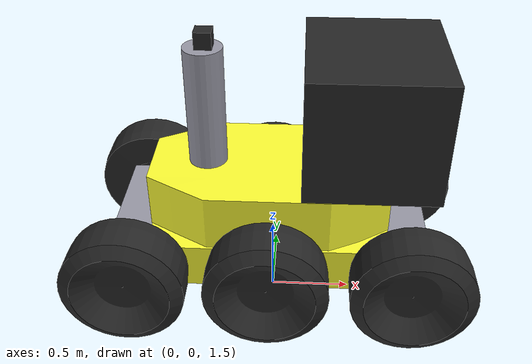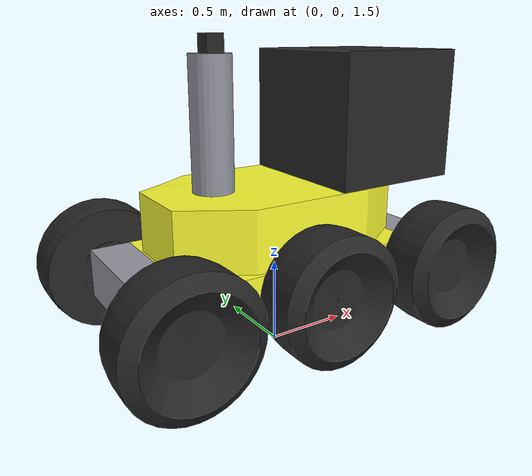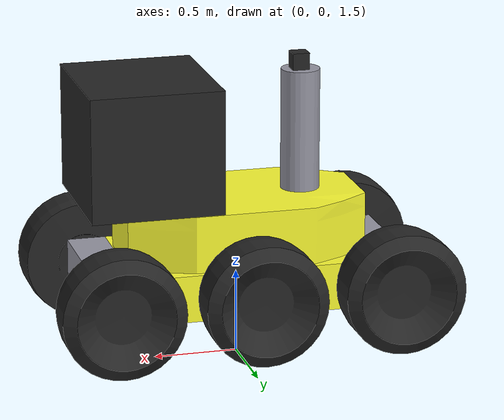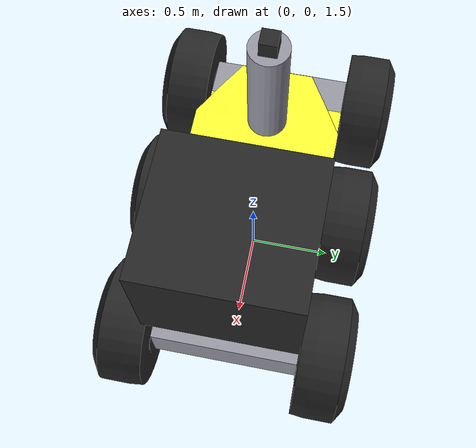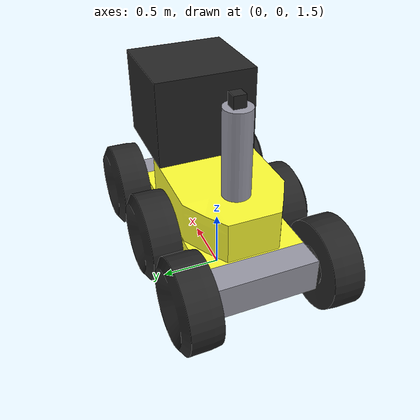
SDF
<sdf version="1.7">
 <world name="default">
  <plugin filename="gz-sim-physics-system" name="gz::sim::systems::Physics"/>
  <plugin filename="gz-sim-user-commands-system" name="gz::sim::systems::UserCommands"/>
  <plugin filename="gz-sim-scene-broadcaster-system" name="gz::sim::systems::SceneBroadcaster"/>
  <plugin filename="gz-sim-sensors-system" name="gz::sim::systems::Sensors">
   <render_engine>ogre2</render_engine>
  </plugin>
  <light name="sun" type="directional">
   <pose>0 0 10 0 -0 0</pose>
   <diffuse>0.8 0.8 0.8 1</diffuse>
   <specular>0.2 0.2 0.2 1</specular>
   <attenuation>
    <range>1000</range>
    <constant>0.9</constant>
    <linear>0.01</linear>
    <quadratic>0.001</quadratic>
   </attenuation>
   <direction>-0.5 0.1 -0.9</direction>
   <spot><inner_angle>0</inner_angle><outer_angle>0</outer_angle><falloff>0</falloff></spot>
  </light>
  <gravity>0 0 -9.8</gravity>
  <magnetic_field>6e-06 2.3e-05 -4.2e-05</magnetic_field>
  <atmosphere type="adiabatic"/>
  <physics type="bullet">
   <max_step_size>0.001</max_step_size>
   <real_time_factor>1</real_time_factor>
   <real_time_update_rate>1000</real_time_update_rate>
   <bullet><solver><type>sequential_impulse</type></solver></bullet>
  </physics>
  <scene>
   <ambient>0.4 0.4 0.4 1</ambient>
   <background>0.7 0.7 0.7 1</background>
   <shadows>1</shadows>
   <sky><clouds><speed>12</speed></clouds><time>10</time></sky>
  </scene>
  <spherical_coordinates>
   <surface_model>EARTH_WGS84</surface_model>
   <latitude_deg>0</latitude_deg>
   <longitude_deg>0</longitude_deg>
   <elevation>0</elevation>
   <heading_deg>0</heading_deg>
  </spherical_coordinates>
  <model name="robovolc">
   <link name="link_0">
    <inertial>
     <mass>1</mass>
     <inertia>
      <ixx>0.166667</ixx>
      <ixy>0</ixy>
      <ixz>0</ixz>
      <iyy>0.166667</iyy>
      <iyz>0</iyz>
      <izz>0.166667</izz>
     </inertia>
    </inertial>
    <pose>-0.014097 0.007179 0 0 -0 0</pose>
    <visual name="visual">
     <geometry>
      <mesh>
       <uri>/home/kenan/Documents/Thesis/robot-alignment-thesis/gazebo/models/robovolc/parts/lowerframe.dae</uri>
       <scale>1 1 1</scale>
      </mesh>
     </geometry>
     <material>
      <ambient>0.8 0.8 0.1 1.0</ambient>
      <diffuse>1.0 1.0 0.2 1.0</diffuse>
      <specular>0.2 0.2 0.2 1.0</specular>
      <emissive>0 0 0 1.0</emissive>
     </material>
    </visual>
    <collision name="collision">
     <geometry><box><size>0.8 0.8 0.2</size></box></geometry>
     <surface>
      <friction>
       <ode><mu>1</mu><mu2>1</mu2><fdir1>0 0 0</fdir1><slip1>0</slip1><slip2>0</slip2></ode>
       <torsional>
        <coefficient>1</coefficient>
        <patch_radius>0</patch_radius>
        <surface_radius>0</surface_radius>
        <use_patch_radius>1</use_patch_radius>
        <ode><slip>0</slip></ode>
       </torsional>
      </friction>
      <bounce><restitution_coefficient>0</restitution_coefficient><threshold>1e+06</threshold></bounce>
      <contact>
       <collide_without_contact>0</collide_without_contact>
       <collide_without_contact_bitmask>1</collide_without_contact_bitmask>
       <collide_bitmask>1</collide_bitmask>
       <ode>
        <soft_cfm>0</soft_cfm>
        <soft_erp>0.2</soft_erp>
        <kp>1e+13</kp>
        <kd>1</kd>
        <max_vel>0.01</max_vel>
        <min_depth>0</min_depth>
       </ode>
       <bullet>
        <split_impulse>1</split_impulse>
        <split_impulse_penetration_threshold>-0.01</split_impulse_penetration_threshold>
        <soft_cfm>0</soft_cfm>
        <soft_erp>0.2</soft_erp>
        <kp>1e+13</kp>
        <kd>1</kd>
       </bullet>
      </contact>
     </surface>
    </collision>
   </link>
   <link name="link_1">
    <inertial>
     <mass>1</mass>
     <inertia>
      <ixx>0.166667</ixx>
      <ixy>0</ixy>
      <ixz>0</ixz>
      <iyy>0.166667</iyy>
      <iyz>0</iyz>
      <izz>0.166667</izz>
     </inertia>
    </inertial>
    <pose>0.819354 0.007179 0 0 -0 0</pose>
    <visual name="visual">
     <geometry>
      <mesh>
       <uri>/home/kenan/Documents/Thesis/robot-alignment-thesis/gazebo/models/robovolc/parts/freedom.dae</uri>
       <scale>1 1 1</scale>
      </mesh>
     </geometry>
     <material>
      <ambient>0.5 0.5 0.5 1.0</ambient>
      <diffuse>0.6 0.6 0.65 1.0</diffuse>
      <specular>0.7 0.7 0.7 1.0</specular>
      <emissive>0 0 0 1.0</emissive>
     </material>
    </visual>
    <collision name="collision">
     <geometry><box><size>0.8 0.8 0.2</size></box></geometry>
     <surface>
      <friction>
       <ode><mu>1</mu><mu2>1</mu2><fdir1>0 0 0</fdir1><slip1>0</slip1><slip2>0</slip2></ode>
       <torsional>
        <coefficient>1</coefficient>
        <patch_radius>0</patch_radius>
        <surface_radius>0</surface_radius>
        <use_patch_radius>1</use_patch_radius>
        <ode><slip>0</slip></ode>
       </torsional>
      </friction>
      <bounce><restitution_coefficient>0</restitution_coefficient><threshold>1e+06</threshold></bounce>
      <contact>
       <collide_without_contact>0</collide_without_contact>
       <collide_without_contact_bitmask>1</collide_without_contact_bitmask>
       <collide_bitmask>1</collide_bitmask>
       <ode>
        <soft_cfm>0</soft_cfm>
        <soft_erp>0.2</soft_erp>
        <kp>1e+13</kp>
        <kd>1</kd>
        <max_vel>0.01</max_vel>
        <min_depth>0</min_depth>
       </ode>
       <bullet>
        <split_impulse>1</split_impulse>
        <split_impulse_penetration_threshold>-0.01</split_impulse_penetration_threshold>
        <soft_cfm>0</soft_cfm>
        <soft_erp>0.2</soft_erp>
        <kp>1e+13</kp>
        <kd>1</kd>
       </bullet>
      </contact>
     </surface>
    </collision>
   </link>
   <link name="link_1_clone">
    <inertial>
     <mass>1</mass>
     <inertia>
      <ixx>0.166667</ixx>
      <ixy>0</ixy>
      <ixz>0</ixz>
      <iyy>0.166667</iyy>
      <iyz>0</iyz>
      <izz>0.166667</izz>
     </inertia>
    </inertial>
    <pose>-0.84755 0.007179 0 0 -0 0</pose>
    <visual name="visual">
     <geometry>
      <mesh>
       <uri>/home/kenan/Documents/Thesis/robot-alignment-thesis/gazebo/models/robovolc/parts/freedom.dae</uri>
       <scale>1 1 1</scale>
      </mesh>
     </geometry>
     <material>
      <ambient>0.5 0.5 0.5 1.0</ambient>
      <diffuse>0.6 0.6 0.65 1.0</diffuse>
      <specular>0.7 0.7 0.7 1.0</specular>
      <emissive>0 0 0 1.0</emissive>
     </material>
    </visual>
    <collision name="collision">
     <geometry><box><size>0.8 0.8 0.2</size></box></geometry>
     <surface>
      <friction>
       <ode><mu>1</mu><mu2>1</mu2><fdir1>0 0 0</fdir1><slip1>0</slip1><slip2>0</slip2></ode>
       <torsional>
        <coefficient>1</coefficient>
        <patch_radius>0</patch_radius>
        <surface_radius>0</surface_radius>
        <use_patch_radius>1</use_patch_radius>
        <ode><slip>0</slip></ode>
       </torsional>
      </friction>
      <bounce><restitution_coefficient>0</restitution_coefficient><threshold>1e+06</threshold></bounce>
      <contact>
       <collide_without_contact>0</collide_without_contact>
       <collide_without_contact_bitmask>1</collide_without_contact_bitmask>
       <collide_bitmask>1</collide_bitmask>
       <ode>
        <soft_cfm>0</soft_cfm>
        <soft_erp>0.2</soft_erp>
        <kp>1e+13</kp>
        <kd>1</kd>
        <max_vel>0.01</max_vel>
        <min_depth>0</min_depth>
       </ode>
       <bullet>
        <split_impulse>1</split_impulse>
        <split_impulse_penetration_threshold>-0.01</split_impulse_penetration_threshold>
        <soft_cfm>0</soft_cfm>
        <soft_erp>0.2</soft_erp>
        <kp>1e+13</kp>
        <kd>1</kd>
       </bullet>
      </contact>
     </surface>
    </collision>
   </link>
   <link name="link_2">
    <inertial>
     <mass>1</mass>
     <inertia>
      <ixx>0.166667</ixx>
      <ixy>0</ixy>
      <ixz>0</ixz>
      <iyy>0.166667</iyy>
      <iyz>0</iyz>
      <izz>0.166667</izz>
     </inertia>
    </inertial>
    <pose>0.826437 -0.58875 0 0 -0 0</pose>
    <visual name="visual">
     <geometry>
      <mesh>
       <uri>/home/kenan/Documents/Thesis/robot-alignment-thesis/gazebo/models/robovolc/parts/wheel.dae</uri>
       <scale>1 1 1</scale>
      </mesh>
     </geometry>
     <material>
      <ambient>0.1 0.1 0.1 1.0</ambient>
      <diffuse>0.15 0.15 0.15 1.0</diffuse>
      <specular>0.1 0.1 0.1 1.0</specular>
      <emissive>0 0 0 1.0</emissive>
     </material>
    </visual>
    <collision name="collision">
     <geometry><cylinder><radius>0.3</radius><length>0.2</length></cylinder></geometry>
     <surface>
      <friction>
       <ode><mu>1</mu><mu2>1</mu2><fdir1>0 0 0</fdir1><slip1>0</slip1><slip2>0</slip2></ode>
       <torsional>
        <coefficient>1</coefficient>
        <patch_radius>0</patch_radius>
        <surface_radius>0</surface_radius>
        <use_patch_radius>1</use_patch_radius>
        <ode><slip>0</slip></ode>
       </torsional>
      </friction>
      <bounce><restitution_coefficient>0</restitution_coefficient><threshold>1e+06</threshold></bounce>
      <contact>
       <collide_without_contact>0</collide_without_contact>
       <collide_without_contact_bitmask>1</collide_without_contact_bitmask>
       <collide_bitmask>1</collide_bitmask>
       <ode>
        <soft_cfm>0</soft_cfm>
        <soft_erp>0.2</soft_erp>
        <kp>1e+13</kp>
        <kd>1</kd>
        <max_vel>0.01</max_vel>
        <min_depth>0</min_depth>
       </ode>
       <bullet>
        <split_impulse>1</split_impulse>
        <split_impulse_penetration_threshold>-0.01</split_impulse_penetration_threshold>
        <soft_cfm>0</soft_cfm>
        <soft_erp>0.2</soft_erp>
        <kp>1e+13</kp>
        <kd>1</kd>
       </bullet>
      </contact>
     </surface>
    </collision>
   </link>
   <link name="link_2_clone">
    <inertial>
     <mass>1</mass>
     <inertia>
      <ixx>0.166667</ixx>
      <ixy>0</ixy>
      <ixz>0</ixz>
      <iyy>0.166667</iyy>
      <iyz>0</iyz>
      <izz>0.166667</izz>
     </inertia>
    </inertial>
    <pose>-0.840467 -0.588751 0 0 -0 0</pose>
    <visual name="visual">
     <geometry>
      <mesh>
       <uri>/home/kenan/Documents/Thesis/robot-alignment-thesis/gazebo/models/robovolc/parts/wheel.dae</uri>
       <scale>1 1 1</scale>
      </mesh>
     </geometry>
     <material>
      <ambient>0.1 0.1 0.1 1.0</ambient>
      <diffuse>0.15 0.15 0.15 1.0</diffuse>
      <specular>0.1 0.1 0.1 1.0</specular>
      <emissive>0 0 0 1.0</emissive>
     </material>
    </visual>
    <collision name="collision">
     <geometry><cylinder><radius>0.3</radius><length>0.2</length></cylinder></geometry>
     <surface>
      <friction>
       <ode><mu>1</mu><mu2>1</mu2><fdir1>0 0 0</fdir1><slip1>0</slip1><slip2>0</slip2></ode>
       <torsional>
        <coefficient>1</coefficient>
        <patch_radius>0</patch_radius>
        <surface_radius>0</surface_radius>
        <use_patch_radius>1</use_patch_radius>
        <ode><slip>0</slip></ode>
       </torsional>
      </friction>
      <bounce><restitution_coefficient>0</restitution_coefficient><threshold>1e+06</threshold></bounce>
      <contact>
       <collide_without_contact>0</collide_without_contact>
       <collide_without_contact_bitmask>1</collide_without_contact_bitmask>
       <collide_bitmask>1</collide_bitmask>
       <ode>
        <soft_cfm>0</soft_cfm>
        <soft_erp>0.2</soft_erp>
        <kp>1e+13</kp>
        <kd>1</kd>
        <max_vel>0.01</max_vel>
        <min_depth>0</min_depth>
       </ode>
       <bullet>
        <split_impulse>1</split_impulse>
        <split_impulse_penetration_threshold>-0.01</split_impulse_penetration_threshold>
        <soft_cfm>0</soft_cfm>
        <soft_erp>0.2</soft_erp>
        <kp>1e+13</kp>
        <kd>1</kd>
       </bullet>
      </contact>
     </surface>
    </collision>
   </link>
   <link name="link_2_clone_0_clone_clone">
    <inertial>
     <mass>1</mass>
     <inertia>
      <ixx>0.166667</ixx>
      <ixy>0</ixy>
      <ixz>0</ixz>
      <iyy>0.166667</iyy>
      <iyz>0</iyz>
      <izz>0.166667</izz>
     </inertia>
    </inertial>
    <pose>0.826437 0.60311 0 0 -0 3.14159</pose>
    <visual name="visual">
     <geometry>
      <mesh>
       <uri>/home/kenan/Documents/Thesis/robot-alignment-thesis/gazebo/models/robovolc/parts/wheel.dae</uri>
       <scale>1 1 1</scale>
      </mesh>
     </geometry>
     <material>
      <ambient>0.1 0.1 0.1 1.0</ambient>
      <diffuse>0.15 0.15 0.15 1.0</diffuse>
      <specular>0.1 0.1 0.1 1.0</specular>
      <emissive>0 0 0 1.0</emissive>
     </material>
    </visual>
    <collision name="collision">
     <geometry><cylinder><radius>0.3</radius><length>0.2</length></cylinder></geometry>
     <surface>
      <friction>
       <ode><mu>1</mu><mu2>1</mu2><fdir1>0 0 0</fdir1><slip1>0</slip1><slip2>0</slip2></ode>
       <torsional>
        <coefficient>1</coefficient>
        <patch_radius>0</patch_radius>
        <surface_radius>0</surface_radius>
        <use_patch_radius>1</use_patch_radius>
        <ode><slip>0</slip></ode>
       </torsional>
      </friction>
      <bounce><restitution_coefficient>0</restitution_coefficient><threshold>1e+06</threshold></bounce>
      <contact>
       <collide_without_contact>0</collide_without_contact>
       <collide_without_contact_bitmask>1</collide_without_contact_bitmask>
       <collide_bitmask>1</collide_bitmask>
       <ode>
        <soft_cfm>0</soft_cfm>
        <soft_erp>0.2</soft_erp>
        <kp>1e+13</kp>
        <kd>1</kd>
        <max_vel>0.01</max_vel>
        <min_depth>0</min_depth>
       </ode>
       <bullet>
        <split_impulse>1</split_impulse>
        <split_impulse_penetration_threshold>-0.01</split_impulse_penetration_threshold>
        <soft_cfm>0</soft_cfm>
        <soft_erp>0.2</soft_erp>
        <kp>1e+13</kp>
        <kd>1</kd>
       </bullet>
      </contact>
     </surface>
    </collision>
   </link>
   <link name="link_2_clone_0_clone_clone_clone">
    <inertial>
     <mass>1</mass>
     <inertia>
      <ixx>0.166667</ixx>
      <ixy>0</ixy>
      <ixz>0</ixz>
      <iyy>0.166667</iyy>
      <iyz>0</iyz>
      <izz>0.166667</izz>
     </inertia>
    </inertial>
    <pose>-0.84755 0.60311 0 0 -0 3.14159</pose>
    <visual name="visual">
     <geometry>
      <mesh>
       <uri>/home/kenan/Documents/Thesis/robot-alignment-thesis/gazebo/models/robovolc/parts/wheel.dae</uri>
       <scale>1 1 1</scale>
      </mesh>
     </geometry>
     <material>
      <ambient>0.1 0.1 0.1 1.0</ambient>
      <diffuse>0.15 0.15 0.15 1.0</diffuse>
      <specular>0.1 0.1 0.1 1.0</specular>
      <emissive>0 0 0 1.0</emissive>
     </material>
    </visual>
    <collision name="collision">
     <geometry><cylinder><radius>0.3</radius><length>0.2</length></cylinder></geometry>
     <surface>
      <friction>
       <ode><mu>1</mu><mu2>1</mu2><fdir1>0 0 0</fdir1><slip1>0</slip1><slip2>0</slip2></ode>
       <torsional>
        <coefficient>1</coefficient>
        <patch_radius>0</patch_radius>
        <surface_radius>0</surface_radius>
        <use_patch_radius>1</use_patch_radius>
        <ode><slip>0</slip></ode>
       </torsional>
      </friction>
      <bounce><restitution_coefficient>0</restitution_coefficient><threshold>1e+06</threshold></bounce>
      <contact>
       <collide_without_contact>0</collide_without_contact>
       <collide_without_contact_bitmask>1</collide_without_contact_bitmask>
       <collide_bitmask>1</collide_bitmask>
       <ode>
        <soft_cfm>0</soft_cfm>
        <soft_erp>0.2</soft_erp>
        <kp>1e+13</kp>
        <kd>1</kd>
        <max_vel>0.01</max_vel>
        <min_depth>0</min_depth>
       </ode>
       <bullet>
        <split_impulse>1</split_impulse>
        <split_impulse_penetration_threshold>-0.01</split_impulse_penetration_threshold>
        <soft_cfm>0</soft_cfm>
        <soft_erp>0.2</soft_erp>
        <kp>1e+13</kp>
        <kd>1</kd>
       </bullet>
      </contact>
     </surface>
    </collision>
   </link>
   <link name="link_2_clone_0_clone_clone_clone_0">
    <inertial>
     <mass>1</mass>
     <inertia>
      <ixx>0.166667</ixx>
      <ixy>0</ixy>
      <ixz>0</ixz>
      <iyy>0.166667</iyy>
      <iyz>0</iyz>
      <izz>0.166667</izz>
     </inertia>
    </inertial>
    <pose>-0.014097 0.60311 0 0 -0 3.14159</pose>
    <visual name="visual">
     <geometry>
      <mesh>
       <uri>/home/kenan/Documents/Thesis/robot-alignment-thesis/gazebo/models/robovolc/parts/wheel.dae</uri>
       <scale>1 1 1</scale>
      </mesh>
     </geometry>
     <material>
      <ambient>0.1 0.1 0.1 1.0</ambient>
      <diffuse>0.15 0.15 0.15 1.0</diffuse>
      <specular>0.1 0.1 0.1 1.0</specular>
      <emissive>0 0 0 1.0</emissive>
     </material>
    </visual>
    <collision name="collision">
     <geometry><cylinder><radius>0.3</radius><length>0.2</length></cylinder></geometry>
     <surface>
      <friction>
       <ode><mu>1</mu><mu2>1</mu2><fdir1>0 0 0</fdir1><slip1>0</slip1><slip2>0</slip2></ode>
       <torsional>
        <coefficient>1</coefficient>
        <patch_radius>0</patch_radius>
        <surface_radius>0</surface_radius>
        <use_patch_radius>1</use_patch_radius>
        <ode><slip>0</slip></ode>
       </torsional>
      </friction>
      <bounce><restitution_coefficient>0</restitution_coefficient><threshold>1e+06</threshold></bounce>
      <contact>
       <collide_without_contact>0</collide_without_contact>
       <collide_without_contact_bitmask>1</collide_without_contact_bitmask>
       <collide_bitmask>1</collide_bitmask>
       <ode>
        <soft_cfm>0</soft_cfm>
        <soft_erp>0.2</soft_erp>
        <kp>1e+13</kp>
        <kd>1</kd>
        <max_vel>0.01</max_vel>
        <min_depth>0</min_depth>
       </ode>
       <bullet>
        <split_impulse>1</split_impulse>
        <split_impulse_penetration_threshold>-0.01</split_impulse_penetration_threshold>
        <soft_cfm>0</soft_cfm>
        <soft_erp>0.2</soft_erp>
        <kp>1e+13</kp>
        <kd>1</kd>
       </bullet>
      </contact>
     </surface>
    </collision>
   </link>
   <link name="link_2_clone_clone">
    <inertial>
     <mass>1</mass>
     <inertia>
      <ixx>0.166667</ixx>
      <ixy>0</ixy>
      <ixz>0</ixz>
      <iyy>0.166667</iyy>
      <iyz>0</iyz>
      <izz>0.166667</izz>
     </inertia>
    </inertial>
    <pose>-0.014097 -0.588751 0 0 -0 0</pose>
    <visual name="visual">
     <geometry>
      <mesh>
       <uri>/home/kenan/Documents/Thesis/robot-alignment-thesis/gazebo/models/robovolc/parts/wheel.dae</uri>
       <scale>1 1 1</scale>
      </mesh>
     </geometry>
     <material>
      <ambient>0.1 0.1 0.1 1.0</ambient>
      <diffuse>0.15 0.15 0.15 1.0</diffuse>
      <specular>0.1 0.1 0.1 1.0</specular>
      <emissive>0 0 0 1.0</emissive>
     </material>
    </visual>
    <collision name="collision">
     <geometry><cylinder><radius>0.3</radius><length>0.2</length></cylinder></geometry>
     <surface>
      <friction>
       <ode><mu>1</mu><mu2>1</mu2><fdir1>0 0 0</fdir1><slip1>0</slip1><slip2>0</slip2></ode>
       <torsional>
        <coefficient>1</coefficient>
        <patch_radius>0</patch_radius>
        <surface_radius>0</surface_radius>
        <use_patch_radius>1</use_patch_radius>
        <ode><slip>0</slip></ode>
       </torsional>
      </friction>
      <bounce><restitution_coefficient>0</restitution_coefficient><threshold>1e+06</threshold></bounce>
      <contact>
       <collide_without_contact>0</collide_without_contact>
       <collide_without_contact_bitmask>1</collide_without_contact_bitmask>
       <collide_bitmask>1</collide_bitmask>
       <ode>
        <soft_cfm>0</soft_cfm>
        <soft_erp>0.2</soft_erp>
        <kp>1e+13</kp>
        <kd>1</kd>
        <max_vel>0.01</max_vel>
        <min_depth>0</min_depth>
       </ode>
       <bullet>
        <split_impulse>1</split_impulse>
        <split_impulse_penetration_threshold>-0.01</split_impulse_penetration_threshold>
        <soft_cfm>0</soft_cfm>
        <soft_erp>0.2</soft_erp>
        <kp>1e+13</kp>
        <kd>1</kd>
       </bullet>
      </contact>
     </surface>
    </collision>
   </link>
   <link name="link_3">
    <inertial>
     <mass>1</mass>
     <inertia>
      <ixx>0.166667</ixx>
      <ixy>0</ixy>
      <ixz>0</ixz>
      <iyy>0.166667</iyy>
      <iyz>0</iyz>
      <izz>0.166667</izz>
     </inertia>
    </inertial>
    <pose>-0.014097 0.007179 0.323851 0 -0 0</pose>
    <visual name="visual">
     <geometry>
      <mesh>
       <uri>/home/kenan/Documents/Thesis/robot-alignment-thesis/gazebo/models/robovolc/parts/body.dae</uri>
       <scale>1 1 1</scale>
      </mesh>
     </geometry>
     <material>
      <ambient>0.8 0.8 0.1 1.0</ambient>
      <diffuse>1.0 1.0 0.2 1.0</diffuse>
      <specular>0.2 0.2 0.2 1.0</specular>
      <emissive>0 0 0 1.0</emissive>
     </material>
    </visual>
    <collision name="collision">
     <geometry><box><size>0.9 0.9 0.4</size></box></geometry>
     <surface>
      <friction>
       <ode><mu>1</mu><mu2>1</mu2><fdir1>0 0 0</fdir1><slip1>0</slip1><slip2>0</slip2></ode>
       <torsional>
        <coefficient>1</coefficient>
        <patch_radius>0</patch_radius>
        <surface_radius>0</surface_radius>
        <use_patch_radius>1</use_patch_radius>
        <ode><slip>0</slip></ode>
       </torsional>
      </friction>
      <bounce><restitution_coefficient>0</restitution_coefficient><threshold>1e+06</threshold></bounce>
      <contact>
       <collide_without_contact>0</collide_without_contact>
       <collide_without_contact_bitmask>1</collide_without_contact_bitmask>
       <collide_bitmask>1</collide_bitmask>
       <ode>
        <soft_cfm>0</soft_cfm>
        <soft_erp>0.2</soft_erp>
        <kp>1e+13</kp>
        <kd>1</kd>
        <max_vel>0.01</max_vel>
        <min_depth>0</min_depth>
       </ode>
       <bullet>
        <split_impulse>1</split_impulse>
        <split_impulse_penetration_threshold>-0.01</split_impulse_penetration_threshold>
        <soft_cfm>0</soft_cfm>
        <soft_erp>0.2</soft_erp>
        <kp>1e+13</kp>
        <kd>1</kd>
       </bullet>
      </contact>
     </surface>
    </collision>
   </link>
   <link name="link_4">
    <inertial>
     <mass>1</mass>
     <inertia>
      <ixx>0.166667</ixx>
      <ixy>0</ixy>
      <ixz>0</ixz>
      <iyy>0.166667</iyy>
      <iyz>0</iyz>
      <izz>0.166667</izz>
     </inertia>
    </inertial>
    <pose>0.565967 0.007179 0.863603 0 -0 0</pose>
    <visual name="visual">
     <geometry>
      <mesh>
       <uri>/home/kenan/Documents/Thesis/robot-alignment-thesis/gazebo/models/robovolc/parts/box.dae</uri>
       <scale>1 1 1</scale>
      </mesh>
     </geometry>
     <material>
      <ambient>0.1 0.1 0.1 1.0</ambient>
      <diffuse>0.15 0.15 0.15 1.0</diffuse>
      <specular>0.1 0.1 0.1 1.0</specular>
      <emissive>0 0 0 1.0</emissive>
     </material>
    </visual>
    <collision name="collision">
     <geometry><box><size>0.4 0.4 0.3</size></box></geometry>
     <surface>
      <friction>
       <ode><mu>1</mu><mu2>1</mu2><fdir1>0 0 0</fdir1><slip1>0</slip1><slip2>0</slip2></ode>
       <torsional>
        <coefficient>1</coefficient>
        <patch_radius>0</patch_radius>
        <surface_radius>0</surface_radius>
        <use_patch_radius>1</use_patch_radius>
        <ode><slip>0</slip></ode>
       </torsional>
      </friction>
      <bounce><restitution_coefficient>0</restitution_coefficient><threshold>1e+06</threshold></bounce>
      <contact>
       <collide_without_contact>0</collide_without_contact>
       <collide_without_contact_bitmask>1</collide_without_contact_bitmask>
       <collide_bitmask>1</collide_bitmask>
       <ode>
        <soft_cfm>0</soft_cfm>
        <soft_erp>0.2</soft_erp>
        <kp>1e+13</kp>
        <kd>1</kd>
        <max_vel>0.01</max_vel>
        <min_depth>0</min_depth>
       </ode>
       <bullet>
        <split_impulse>1</split_impulse>
        <split_impulse_penetration_threshold>-0.01</split_impulse_penetration_threshold>
        <soft_cfm>0</soft_cfm>
        <soft_erp>0.2</soft_erp>
        <kp>1e+13</kp>
        <kd>1</kd>
       </bullet>
      </contact>
     </surface>
    </collision>
   </link>
   <link name="link_5">
    <inertial>
     <mass>0.0385401</mass>
     <inertia>
      <ixx>0.00182388</ixx>
      <ixy>0</ixy>
      <ixz>0</ixz>
      <iyy>0.00182388</iyy>
      <iyz>0</iyz>
      <izz>0.000255542</izz>
     </inertia>
    </inertial>
    <pose>-0.390551 0.007179 0.858934 0 -0 0</pose>
    <visual name="visual">
     <geometry><cylinder><radius>0.115157</radius><length>0.72671</length></cylinder></geometry>
     <material>
      <ambient>0.5 0.5 0.5 1.0</ambient>
      <diffuse>0.6 0.6 0.65 1.0</diffuse>
      <specular>0.7 0.7 0.7 1.0</specular>
      <emissive>0 0 0 1.0</emissive>
     </material>
    </visual>
    <collision name="collision">
     <geometry><cylinder><radius>0.115157</radius><length>0.72671</length></cylinder></geometry>
     <surface>
      <friction>
       <ode><mu>1</mu><mu2>1</mu2><fdir1>0 0 0</fdir1><slip1>0</slip1><slip2>0</slip2></ode>
       <torsional>
        <coefficient>1</coefficient>
        <patch_radius>0</patch_radius>
        <surface_radius>0</surface_radius>
        <use_patch_radius>1</use_patch_radius>
        <ode><slip>0</slip></ode>
       </torsional>
      </friction>
      <bounce><restitution_coefficient>0</restitution_coefficient><threshold>1e+06</threshold></bounce>
      <contact>
       <collide_without_contact>0</collide_without_contact>
       <collide_without_contact_bitmask>1</collide_without_contact_bitmask>
       <collide_bitmask>1</collide_bitmask>
       <ode>
        <soft_cfm>0</soft_cfm>
        <soft_erp>0.2</soft_erp>
        <kp>1e+13</kp>
        <kd>1</kd>
        <max_vel>0.01</max_vel>
        <min_depth>0</min_depth>
       </ode>
       <bullet>
        <split_impulse>1</split_impulse>
        <split_impulse_penetration_threshold>-0.01</split_impulse_penetration_threshold>
        <soft_cfm>0</soft_cfm>
        <soft_erp>0.2</soft_erp>
        <kp>1e+13</kp>
        <kd>1</kd>
       </bullet>
      </contact>
     </surface>
    </collision>
   </link>
   <model name="camera">
    <pose>-0.381907 0.010528 1.27216 0 -1.57 3.13666</pose>
    <link name="link">
     <inertial>
      <mass>0.1</mass>
      <inertia>
       <ixx>0.000166667</ixx>
       <iyy>0.000166667</iyy>
       <izz>0.000166667</izz>
       <ixy>0</ixy>
       <ixz>0</ixz>
       <iyz>0</iyz>
      </inertia>
     </inertial>
     <collision name="collision"><geometry><box><size>0.1 0.1 0.1</size></box></geometry></collision>
     <visual name="visual">
      <geometry><box><size>0.1 0.1 0.1</size></box></geometry>
      <material>
       <ambient>0.1 0.1 0.1 1.0</ambient>
       <diffuse>0.15 0.15 0.15 1.0</diffuse>
       <specular>0.1 0.1 0.1 1.0</specular>
       <emissive>0 0 0 1.0</emissive>
      </material>
     </visual>
     <sensor name="camera" type="camera">
      <camera>
       <horizontal_fov>1.047</horizontal_fov>
       <image><width>320</width><height>240</height></image>
       <clip><near>0.1</near><far>100</far></clip>
      </camera>
      <always_on>1</always_on>
      <update_rate>30</update_rate>
      <visualize>1</visualize>
     </sensor>
    </link>
   </model>
   <joint name="left_1" type="revolute">
    <parent>link_1</parent>
    <child>link_2</child>
    <axis>
     <xyz>0 -1 0</xyz>
     <limit>
      <lower>-1.79769e+308</lower>
      <upper>1.79769e+308</upper>
      <effort>20</effort>
      <velocity>-1</velocity>
     </limit>
     <dynamics>
      <spring_reference>0</spring_reference>
      <spring_stiffness>0</spring_stiffness>
      <damping>0</damping>
      <friction>0</friction>
     </dynamics>
    </axis>
    <physics>
     <ode><limit><cfm>0</cfm><erp>0.2</erp></limit><suspension><cfm>0</cfm><erp>0.2</erp></suspension></ode>
    </physics>
   </joint>
   <joint name="left_2" type="revolute">
    <parent>link_0</parent>
    <child>link_2_clone_clone</child>
    <axis>
     <xyz>0 -1 0</xyz>
     <limit>
      <lower>-1.79769e+308</lower>
      <upper>1.79769e+308</upper>
      <effort>20</effort>
      <velocity>-1</velocity>
     </limit>
     <dynamics>
      <spring_reference>0</spring_reference>
      <spring_stiffness>0</spring_stiffness>
      <damping>0</damping>
      <friction>0</friction>
     </dynamics>
    </axis>
    <physics>
     <ode><limit><cfm>0</cfm><erp>0.2</erp></limit><suspension><cfm>0</cfm><erp>0.2</erp></suspension></ode>
    </physics>
   </joint>
   <joint name="left_3" type="revolute">
    <parent>link_1_clone</parent>
    <child>link_2_clone</child>
    <axis>
     <xyz>0 -1 0</xyz>
     <limit>
      <lower>-1.79769e+308</lower>
      <upper>1.79769e+308</upper>
      <effort>20</effort>
      <velocity>-1</velocity>
     </limit>
     <dynamics>
      <spring_reference>0</spring_reference>
      <spring_stiffness>0</spring_stiffness>
      <damping>0</damping>
      <friction>0</friction>
     </dynamics>
    </axis>
    <physics>
     <ode><limit><cfm>0</cfm><erp>0.2</erp></limit><suspension><cfm>0</cfm><erp>0.2</erp></suspension></ode>
    </physics>
   </joint>
   <joint name="link_0_JOINT_0" type="revolute">
    <parent>link_0</parent>
    <child>link_1</child>
    <axis>
     <xyz>1 0 0</xyz>
     <limit><lower>-0.785</lower><upper>0.785</upper><effort>-1</effort><velocity>-1</velocity></limit>
     <dynamics>
      <spring_reference>0</spring_reference>
      <spring_stiffness>0</spring_stiffness>
      <damping>0</damping>
      <friction>0</friction>
     </dynamics>
    </axis>
    <physics>
     <ode><limit><cfm>0</cfm><erp>0.2</erp></limit><suspension><cfm>0</cfm><erp>0.2</erp></suspension></ode>
    </physics>
   </joint>
   <joint name="link_0_JOINT_10" type="fixed">
    <parent>link_0</parent>
    <child>link_3</child>
    <physics>
     <ode><limit><cfm>0</cfm><erp>0.2</erp></limit><suspension><cfm>0</cfm><erp>0.2</erp></suspension></ode>
    </physics>
   </joint>
   <joint name="link_0_JOINT_1" type="revolute">
    <parent>link_0</parent>
    <child>link_1_clone</child>
    <axis>
     <xyz>1 0 0</xyz>
     <limit><lower>-0.785</lower><upper>0.785</upper><effort>-1</effort><velocity>-1</velocity></limit>
     <dynamics>
      <spring_reference>0</spring_reference>
      <spring_stiffness>0</spring_stiffness>
      <damping>0</damping>
      <friction>0</friction>
     </dynamics>
    </axis>
    <physics>
     <ode><limit><cfm>0</cfm><erp>0.2</erp></limit><suspension><cfm>0</cfm><erp>0.2</erp></suspension></ode>
    </physics>
   </joint>
   <joint name="link_3_JOINT_11" type="fixed">
    <parent>link_3</parent>
    <child>link_4</child>
    <physics>
     <ode><limit><cfm>0</cfm><erp>0.2</erp></limit><suspension><cfm>0</cfm><erp>0.2</erp></suspension></ode>
    </physics>
   </joint>
   <joint name="link_3_JOINT_14" type="fixed">
    <parent>link_3</parent>
    <child>link_5</child>
    <physics>
     <ode><limit><cfm>0</cfm><erp>0.2</erp></limit><suspension><cfm>0</cfm><erp>0.2</erp></suspension></ode>
    </physics>
   </joint>
   <joint name="link_5_JOINT_15" type="revolute">
    <parent>link_5</parent>
    <child>camera::link</child>
    <axis>
     <xyz>1 0 0</xyz>
     <limit>
      <lower>-1.79769e+308</lower>
      <upper>1.79769e+308</upper>
      <effort>-1</effort>
      <velocity>-1</velocity>
     </limit>
     <dynamics>
      <spring_reference>0</spring_reference>
      <spring_stiffness>0</spring_stiffness>
      <damping>0</damping>
      <friction>0</friction>
     </dynamics>
    </axis>
    <physics>
     <ode><limit><cfm>0</cfm><erp>0.2</erp></limit><suspension><cfm>0</cfm><erp>0.2</erp></suspension></ode>
    </physics>
   </joint>
   <joint name="right_1" type="revolute">
    <parent>link_1</parent>
    <child>link_2_clone_0_clone_clone</child>
    <axis>
     <xyz>0 -1 0</xyz>
     <limit>
      <lower>-1.79769e+308</lower>
      <upper>1.79769e+308</upper>
      <effort>20</effort>
      <velocity>-1</velocity>
     </limit>
     <dynamics>
      <spring_reference>0</spring_reference>
      <spring_stiffness>0</spring_stiffness>
      <damping>0</damping>
      <friction>0</friction>
     </dynamics>
    </axis>
    <physics>
     <ode><limit><cfm>0</cfm><erp>0.2</erp></limit><suspension><cfm>0</cfm><erp>0.2</erp></suspension></ode>
    </physics>
   </joint>
   <joint name="right_2" type="revolute">
    <parent>link_0</parent>
    <child>link_2_clone_0_clone_clone_clone_0</child>
    <axis>
     <xyz>0 -1 0</xyz>
     <limit>
      <lower>-1.79769e+308</lower>
      <upper>1.79769e+308</upper>
      <effort>20</effort>
      <velocity>-1</velocity>
     </limit>
     <dynamics>
      <spring_reference>0</spring_reference>
      <spring_stiffness>0</spring_stiffness>
      <damping>0</damping>
      <friction>0</friction>
     </dynamics>
    </axis>
    <physics>
     <ode><limit><cfm>0</cfm><erp>0.2</erp></limit><suspension><cfm>0</cfm><erp>0.2</erp></suspension></ode>
    </physics>
   </joint>
   <joint name="right_3" type="revolute">
    <parent>link_1_clone</parent>
    <child>link_2_clone_0_clone_clone_clone</child>
    <axis>
     <xyz>0 -1 0</xyz>
     <limit>
      <lower>-1.79769e+308</lower>
      <upper>1.79769e+308</upper>
      <effort>20</effort>
      <velocity>-1</velocity>
     </limit>
     <dynamics>
      <spring_reference>0</spring_reference>
      <spring_stiffness>0</spring_stiffness>
      <damping>0</damping>
      <friction>0</friction>
     </dynamics>
    </axis>
    <physics>
     <ode><limit><cfm>0</cfm><erp>0.2</erp></limit><suspension><cfm>0</cfm><erp>0.2</erp></suspension></ode>
    </physics>
   </joint>
   <static>0</static>
   <pose>0 0 2.0 0 0 0</pose>
   <plugin name="gz::sim::systems::DiffDrive" filename="gz-sim-diff-drive-system">
    <left_joint>left_1</left_joint>
    <right_joint>left_1</right_joint>
    <wheel_separation>0.0</wheel_separation>
    <wheel_radius>0.3</wheel_radius>
    <publish_odom>true</publish_odom>
    <publish_odom_tf>true</publish_odom_tf>
    <publish_wheel_tf>true</publish_wheel_tf>
    <frame_id>/left_1/odom_demo</frame_id>
    <child_frame_id>link_0</child_frame_id>
    <topic>/left_1/cmd_demo</topic>
    <odom_topic>/left_1/odom_demo</odom_topic>
    <tf_topic>/left_1/tf</tf_topic>
   </plugin>
   <plugin name="gz::sim::systems::DiffDrive" filename="gz-sim-diff-drive-system">
    <left_joint>left_2</left_joint>
    <right_joint>left_2</right_joint>
    <wheel_separation>0.0</wheel_separation>
    <wheel_radius>0.3</wheel_radius>
    <publish_odom>true</publish_odom>
    <publish_odom_tf>true</publish_odom_tf>
    <publish_wheel_tf>true</publish_wheel_tf>
    <frame_id>/left_2/odom_demo</frame_id>
    <child_frame_id>link_0</child_frame_id>
    <topic>/left_2/cmd_demo</topic>
    <odom_topic>/left_2/odom_demo</odom_topic>
    <tf_topic>/left_2/tf</tf_topic>
   </plugin>
   <plugin name="gz::sim::systems::DiffDrive" filename="gz-sim-diff-drive-system">
    <left_joint>left_3</left_joint>
    <right_joint>left_3</right_joint>
    <wheel_separation>0.0</wheel_separation>
    <wheel_radius>0.3</wheel_radius>
    <publish_odom>true</publish_odom>
    <publish_odom_tf>true</publish_odom_tf>
    <publish_wheel_tf>true</publish_wheel_tf>
    <frame_id>/left_3/odom_demo</frame_id>
    <child_frame_id>link_0</child_frame_id>
    <topic>/left_3/cmd_demo</topic>
    <odom_topic>/left_3/odom_demo</odom_topic>
    <tf_topic>/left_3/tf</tf_topic>
   </plugin>
   <plugin name="gz::sim::systems::DiffDrive" filename="gz-sim-diff-drive-system">
    <left_joint>right_1</left_joint>
    <right_joint>right_1</right_joint>
    <wheel_separation>0.0</wheel_separation>
    <wheel_radius>0.3</wheel_radius>
    <publish_odom>true</publish_odom>
    <publish_odom_tf>true</publish_odom_tf>
    <publish_wheel_tf>true</publish_wheel_tf>
    <frame_id>/right_1/odom_demo</frame_id>
    <child_frame_id>link_0</child_frame_id>
    <topic>/right_1/cmd_demo</topic>
    <odom_topic>/right_1/odom_demo</odom_topic>
    <tf_topic>/right_1/tf</tf_topic>
   </plugin>
   <plugin name="gz::sim::systems::DiffDrive" filename="gz-sim-diff-drive-system">
    <left_joint>right_2</left_joint>
    <right_joint>right_2</right_joint>
    <wheel_separation>0.0</wheel_separation>
    <wheel_radius>0.3</wheel_radius>
    <publish_odom>true</publish_odom>
    <publish_odom_tf>true</publish_odom_tf>
    <publish_wheel_tf>true</publish_wheel_tf>
    <frame_id>/right_2/odom_demo</frame_id>
    <child_frame_id>link_0</child_frame_id>
    <topic>/right_2/cmd_demo</topic>
    <odom_topic>/right_2/odom_demo</odom_topic>
    <tf_topic>/right_2/tf</tf_topic>
   </plugin>
   <plugin name="gz::sim::systems::DiffDrive" filename="gz-sim-diff-drive-system">
    <left_joint>right_3</left_joint>
    <right_joint>right_3</right_joint>
    <wheel_separation>0.0</wheel_separation>
    <wheel_radius>0.3</wheel_radius>
    <publish_odom>true</publish_odom>
    <publish_odom_tf>true</publish_odom_tf>
    <publish_wheel_tf>true</publish_wheel_tf>
    <frame_id>/right_3/odom_demo</frame_id>
    <child_frame_id>link_0</child_frame_id>
    <topic>/right_3/cmd_demo</topic>
    <odom_topic>/right_3/odom_demo</odom_topic>
    <tf_topic>/right_3/tf</tf_topic>
   </plugin>
  </model>
 </world>
</sdf>
